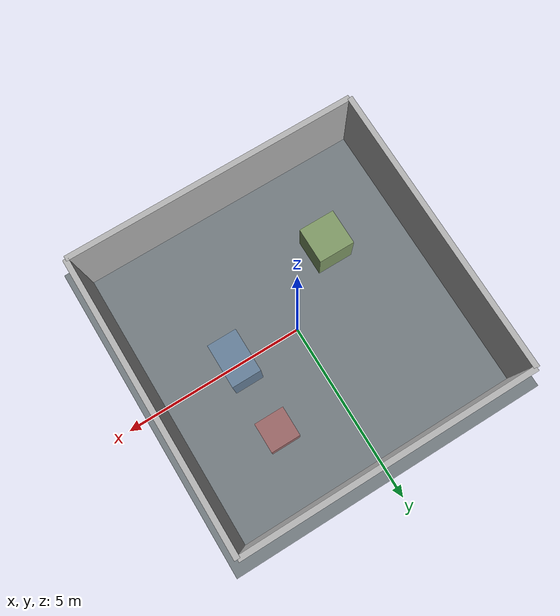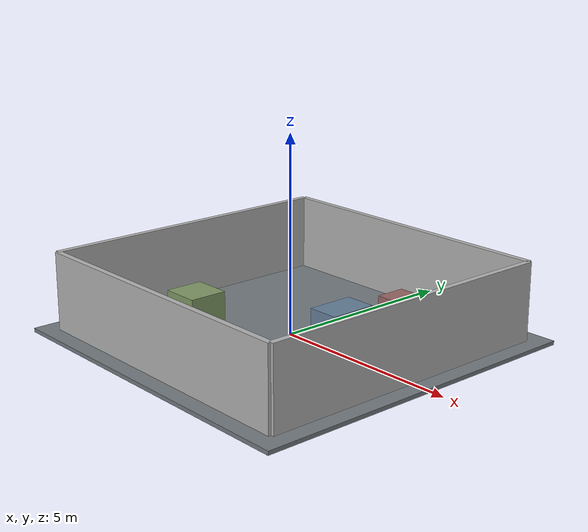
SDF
<sdf version="1.9">
  <world name="qianli_test_world">
    <physics name="default" type="ignored">
      <max_step_size>0.005</max_step_size>
      <real_time_factor>1.0</real_time_factor>
    </physics>
    <gravity>0 0 -9.81</gravity>
    <plugin filename="gz-sim-physics-system" name="gz::sim::systems::Physics" />
    <plugin filename="gz-sim-user-commands-system" name="gz::sim::systems::UserCommands" />
    <plugin filename="gz-sim-scene-broadcaster-system" name="gz::sim::systems::SceneBroadcaster" />
    <plugin filename="gz-sim-sensors-system" name="gz::sim::systems::Sensors">
      <render_engine>ogre2</render_engine>
    </plugin>
    <plugin filename="gz-sim-imu-system" name="gz::sim::systems::Imu" />
    <scene>
      <ambient>0.6 0.6 0.6 1</ambient>
      <background>0.15 0.17 0.20 1</background>
    </scene>
    <light name="sun" type="directional">
      <pose>0 0 5 0 0 0</pose>
      <diffuse>0.8 0.8 0.8 1</diffuse>
      <direction>-0.3 -0.3 -1</direction>
    </light>
    <model name="ground">
      <static>true</static>
      <pose>0 0 -0.05 0 0 0</pose>
      <link name="link">
        <collision name="collision">
          <geometry>
            <box>
              <size>9 9 0.1</size>
            </box>
          </geometry>
        </collision>
        <visual name="visual">
          <geometry>
            <box>
              <size>9 9 0.1</size>
            </box>
          </geometry>
          <material>
            <ambient>.45 .48 .5 1</ambient>
            <diffuse>.45 .48 .5 1</diffuse>
          </material>
        </visual>
      </link>
    </model>
    <model name="wall_east">
      <static>true</static>
      <pose>4 0 1 0 0 0</pose>
      <link name="link">
        <collision name="collision">
          <geometry>
            <box>
              <size>0.15 8 2</size>
            </box>
          </geometry>
        </collision>
        <visual name="visual">
          <geometry>
            <box>
              <size>0.15 8 2</size>
            </box>
          </geometry>
          <material>
            <ambient>.7 .7 .7 1</ambient>
            <diffuse>.7 .7 .7 1</diffuse>
          </material>
        </visual>
      </link>
    </model>
    <model name="wall_west">
      <static>true</static>
      <pose>-4 0 1 0 0 0</pose>
      <link name="link">
        <collision name="collision">
          <geometry>
            <box>
              <size>0.15 8 2</size>
            </box>
          </geometry>
        </collision>
        <visual name="visual">
          <geometry>
            <box>
              <size>0.15 8 2</size>
            </box>
          </geometry>
          <material>
            <ambient>.7 .7 .7 1</ambient>
            <diffuse>.7 .7 .7 1</diffuse>
          </material>
        </visual>
      </link>
    </model>
    <model name="wall_north">
      <static>true</static>
      <pose>0 4 1 0 0 0</pose>
      <link name="link">
        <collision name="collision">
          <geometry>
            <box>
              <size>8 0.15 2</size>
            </box>
          </geometry>
        </collision>
        <visual name="visual">
          <geometry>
            <box>
              <size>8 0.15 2</size>
            </box>
          </geometry>
          <material>
            <ambient>.7 .7 .7 1</ambient>
            <diffuse>.7 .7 .7 1</diffuse>
          </material>
        </visual>
      </link>
    </model>
    <model name="wall_south">
      <static>true</static>
      <pose>0 -4 1 0 0 0</pose>
      <link name="link">
        <collision name="collision">
          <geometry>
            <box>
              <size>8 0.15 2</size>
            </box>
          </geometry>
        </collision>
        <visual name="visual">
          <geometry>
            <box>
              <size>8 0.15 2</size>
            </box>
          </geometry>
          <material>
            <ambient>.7 .7 .7 1</ambient>
            <diffuse>.7 .7 .7 1</diffuse>
          </material>
        </visual>
      </link>
    </model>
    <model name="obstacle_a">
      <static>true</static>
      <pose>1.8 0 0.6 0 0 0</pose>
      <link name="link">
        <collision name="collision">
          <geometry>
            <box>
              <size>0.8 1.2 1.2</size>
            </box>
          </geometry>
        </collision>
        <visual name="visual">
          <geometry>
            <box>
              <size>0.8 1.2 1.2</size>
            </box>
          </geometry>
          <material>
            <ambient>.4 .5 .6 1</ambient>
            <diffuse>.4 .5 .6 1</diffuse>
          </material>
        </visual>
      </link>
    </model>
    <model name="obstacle_b">
      <static>true</static>
      <pose>-1.8 -1.5 0.5 0 0 0</pose>
      <link name="link">
        <collision name="collision">
          <geometry>
            <box>
              <size>1 1 1</size>
            </box>
          </geometry>
        </collision>
        <visual name="visual">
          <geometry>
            <box>
              <size>1 1 1</size>
            </box>
          </geometry>
          <material>
            <ambient>.5 .6 .4 1</ambient>
            <diffuse>.5 .6 .4 1</diffuse>
          </material>
        </visual>
      </link>
    </model>
    <model name="obstacle_c">
      <static>true</static>
      <pose>1.8 2 0.5 0 0 0</pose>
      <link name="link">
        <collision name="collision">
          <geometry>
            <box>
              <size>0.8 0.8 1</size>
            </box>
          </geometry>
        </collision>
        <visual name="visual">
          <geometry>
            <box>
              <size>0.8 0.8 1</size>
            </box>
          </geometry>
          <material>
            <ambient>.6 .4 .4 1</ambient>
            <diffuse>.6 .4 .4 1</diffuse>
          </material>
        </visual>
      </link>
    </model>
  </world>
</sdf>
